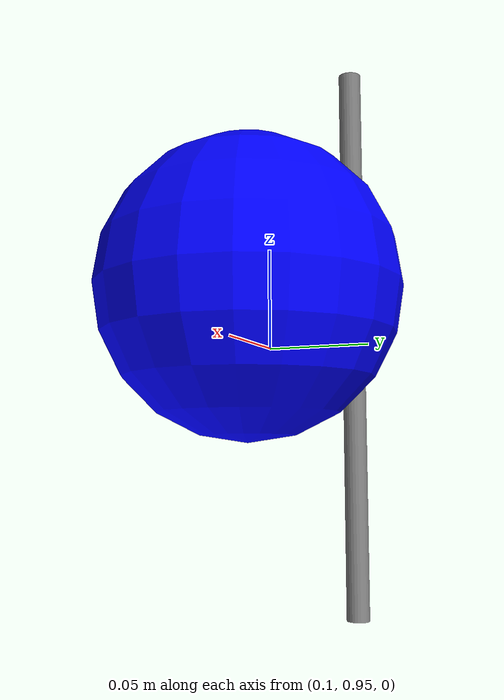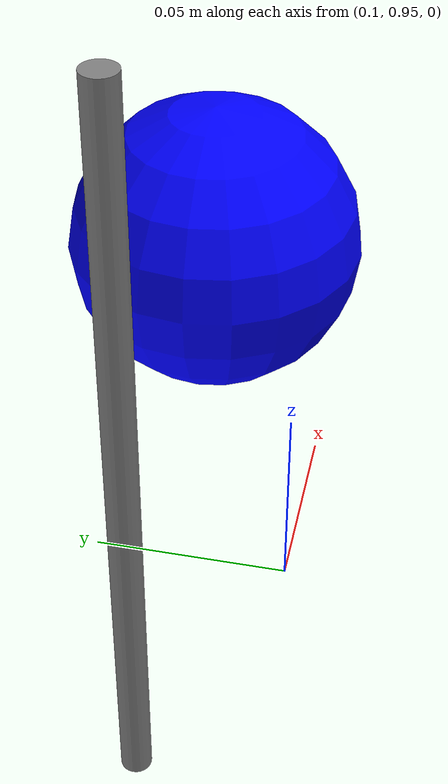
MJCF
<mujoco model="pendulum">
  <option gravity="0 -9.81 0" />

  <worldbody>
    <light diffuse=".5 .5 .5" pos="0 0 -3" dir="0 0 1"/>

    <body name="pendulum_link" pos="0 1 0">
      <joint name="hinge" type="hinge" axis="0 0 1" damping="0" frictionloss="0"/>

      <!-- Rod: Length 0.2485 m, Mass 0 -->
      <geom name="rod" type="cylinder" size="0.005 0.12425" pos="0.12425 0 0" rgba="0.5 0.5 0.5 1" contype="0" conaffinity="0"/>

      <body name="bob" pos="0.2485 0 0">
        <geom name="bob_geom" type="sphere" size="0.05" mass="1" rgba="0 0 1 1"/>
      </body>
    </body>
  </worldbody>
</mujoco>
